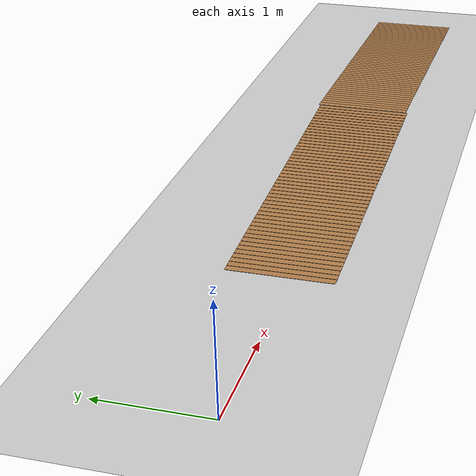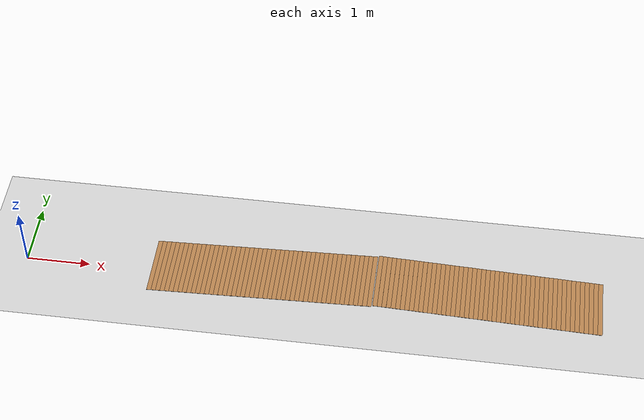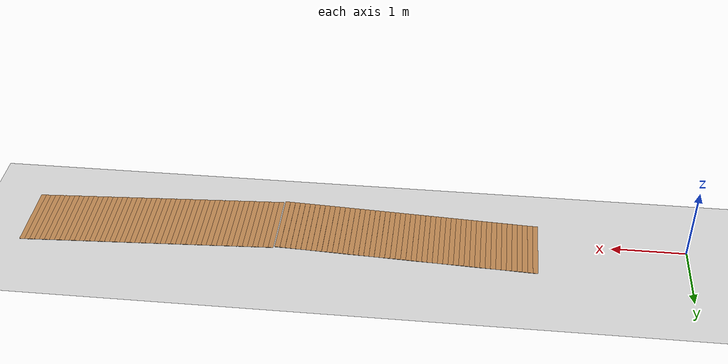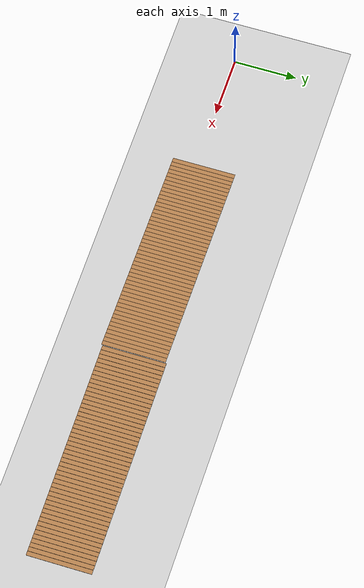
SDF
<sdf version="1.6">
 <world name="default">
  <model name="ground_plane">
   <static>1</static>
   <link name="link">
    <collision name="collision">
     <geometry><plane><normal>0 0 1</normal><size>100 100</size></plane></geometry>
     <surface>
      <contact><collide_bitmask>65535</collide_bitmask></contact>
      <friction><ode><mu>100</mu><mu2>50</mu2></ode></friction>
     </surface>
    </collision>
    <visual name="visual">
     <cast_shadows>0</cast_shadows>
     <geometry><plane><normal>0 0 1</normal><size>100 100</size></plane></geometry>
     <material>
      <script><uri>file://media/materials/scripts/gazebo.material</uri><name>Gazebo/Grey</name></script>
     </material>
    </visual>
   </link>
  </model>
  <model name="lamp">
   <pose>5.48739 0.130038 0 0 -0 0</pose>
   <link name="Stairs_1">
    <visual name="Stairs_1_Visual_0">
     <pose>-3.47239 -0.010038 0.0015 0 -0 1.5708</pose>
     <geometry><box><size>1 0.07 0.003</size></box></geometry>
     <material>
      <script><uri>file://media/materials/scripts/gazebo.material</uri><name>Gazebo/Wood</name></script>
      <ambient>1 1 1 1</ambient>
     </material>
     <meta><layer>0</layer></meta>
    </visual>
    <collision name="Stairs_1_Collision_0">
     <geometry><box><size>1 0.07 0.003</size></box></geometry>
     <pose>-3.47239 -0.010038 0.0015 0 -0 1.5708</pose>
    </collision>
    <visual name="Stairs_1_Visual_1">
     <pose>-3.40239 -0.010038 0.0045 0 -0 1.5708</pose>
     <geometry><box><size>1 0.07 0.003</size></box></geometry>
     <material>
      <script><uri>file://media/materials/scripts/gazebo.material</uri><name>Gazebo/Wood</name></script>
      <ambient>1 1 1 1</ambient>
     </material>
     <meta><layer>0</layer></meta>
    </visual>
    <collision name="Stairs_1_Collision_1">
     <geometry><box><size>1 0.07 0.003</size></box></geometry>
     <pose>-3.40239 -0.010038 0.0045 0 -0 1.5708</pose>
    </collision>
    <visual name="Stairs_1_Visual_2">
     <pose>-3.33239 -0.010038 0.0075 0 -0 1.5708</pose>
     <geometry><box><size>1 0.07 0.003</size></box></geometry>
     <material>
      <script><uri>file://media/materials/scripts/gazebo.material</uri><name>Gazebo/Wood</name></script>
      <ambient>1 1 1 1</ambient>
     </material>
     <meta><layer>0</layer></meta>
    </visual>
    <collision name="Stairs_1_Collision_2">
     <geometry><box><size>1 0.07 0.003</size></box></geometry>
     <pose>-3.33239 -0.010038 0.0075 0 -0 1.5708</pose>
    </collision>
    <visual name="Stairs_1_Visual_3">
     <pose>-3.26239 -0.010038 0.0105 0 -0 1.5708</pose>
     <geometry><box><size>1 0.07 0.003</size></box></geometry>
     <material>
      <script><uri>file://media/materials/scripts/gazebo.material</uri><name>Gazebo/Wood</name></script>
      <ambient>1 1 1 1</ambient>
     </material>
     <meta><layer>0</layer></meta>
    </visual>
    <collision name="Stairs_1_Collision_3">
     <geometry><box><size>1 0.07 0.003</size></box></geometry>
     <pose>-3.26239 -0.010038 0.0105 0 -0 1.5708</pose>
    </collision>
    <visual name="Stairs_1_Visual_4">
     <pose>-3.19239 -0.010038 0.0135 0 -0 1.5708</pose>
     <geometry><box><size>1 0.07 0.003</size></box></geometry>
     <material>
      <script><uri>file://media/materials/scripts/gazebo.material</uri><name>Gazebo/Wood</name></script>
      <ambient>1 1 1 1</ambient>
     </material>
     <meta><layer>0</layer></meta>
    </visual>
    <collision name="Stairs_1_Collision_4">
     <geometry><box><size>1 0.07 0.003</size></box></geometry>
     <pose>-3.19239 -0.010038 0.0135 0 -0 1.5708</pose>
    </collision>
    <visual name="Stairs_1_Visual_5">
     <pose>-3.12239 -0.010038 0.0165 0 -0 1.5708</pose>
     <geometry><box><size>1 0.07 0.003</size></box></geometry>
     <material>
      <script><uri>file://media/materials/scripts/gazebo.material</uri><name>Gazebo/Wood</name></script>
      <ambient>1 1 1 1</ambient>
     </material>
     <meta><layer>0</layer></meta>
    </visual>
    <collision name="Stairs_1_Collision_5">
     <geometry><box><size>1 0.07 0.003</size></box></geometry>
     <pose>-3.12239 -0.010038 0.0165 0 -0 1.5708</pose>
    </collision>
    <visual name="Stairs_1_Visual_6">
     <pose>-3.05239 -0.010038 0.0195 0 -0 1.5708</pose>
     <geometry><box><size>1 0.07 0.003</size></box></geometry>
     <material>
      <script><uri>file://media/materials/scripts/gazebo.material</uri><name>Gazebo/Wood</name></script>
      <ambient>1 1 1 1</ambient>
     </material>
     <meta><layer>0</layer></meta>
    </visual>
    <collision name="Stairs_1_Collision_6">
     <geometry><box><size>1 0.07 0.003</size></box></geometry>
     <pose>-3.05239 -0.010038 0.0195 0 -0 1.5708</pose>
    </collision>
    <visual name="Stairs_1_Visual_7">
     <pose>-2.98239 -0.010038 0.0225 0 -0 1.5708</pose>
     <geometry><box><size>1 0.07 0.003</size></box></geometry>
     <material>
      <script><uri>file://media/materials/scripts/gazebo.material</uri><name>Gazebo/Wood</name></script>
      <ambient>1 1 1 1</ambient>
     </material>
     <meta><layer>0</layer></meta>
    </visual>
    <collision name="Stairs_1_Collision_7">
     <geometry><box><size>1 0.07 0.003</size></box></geometry>
     <pose>-2.98239 -0.010038 0.0225 0 -0 1.5708</pose>
    </collision>
    <visual name="Stairs_1_Visual_8">
     <pose>-2.91239 -0.010038 0.0255 0 -0 1.5708</pose>
     <geometry><box><size>1 0.07 0.003</size></box></geometry>
     <material>
      <script><uri>file://media/materials/scripts/gazebo.material</uri><name>Gazebo/Wood</name></script>
      <ambient>1 1 1 1</ambient>
     </material>
     <meta><layer>0</layer></meta>
    </visual>
    <collision name="Stairs_1_Collision_8">
     <geometry><box><size>1 0.07 0.003</size></box></geometry>
     <pose>-2.91239 -0.010038 0.0255 0 -0 1.5708</pose>
    </collision>
    <visual name="Stairs_1_Visual_9">
     <pose>-2.84239 -0.010038 0.0285 0 -0 1.5708</pose>
     <geometry><box><size>1 0.07 0.003</size></box></geometry>
     <material>
      <script><uri>file://media/materials/scripts/gazebo.material</uri><name>Gazebo/Wood</name></script>
      <ambient>1 1 1 1</ambient>
     </material>
     <meta><layer>0</layer></meta>
    </visual>
    <collision name="Stairs_1_Collision_9">
     <geometry><box><size>1 0.07 0.003</size></box></geometry>
     <pose>-2.84239 -0.010038 0.0285 0 -0 1.5708</pose>
    </collision>
    <visual name="Stairs_1_Visual_10">
     <pose>-2.77239 -0.010038 0.0315 0 -0 1.5708</pose>
     <geometry><box><size>1 0.07 0.003</size></box></geometry>
     <material>
      <script><uri>file://media/materials/scripts/gazebo.material</uri><name>Gazebo/Wood</name></script>
      <ambient>1 1 1 1</ambient>
     </material>
     <meta><layer>0</layer></meta>
    </visual>
    <collision name="Stairs_1_Collision_10">
     <geometry><box><size>1 0.07 0.003</size></box></geometry>
     <pose>-2.77239 -0.010038 0.0315 0 -0 1.5708</pose>
    </collision>
    <visual name="Stairs_1_Visual_11">
     <pose>-2.70239 -0.010038 0.0345 0 -0 1.5708</pose>
     <geometry><box><size>1 0.07 0.003</size></box></geometry>
     <material>
      <script><uri>file://media/materials/scripts/gazebo.material</uri><name>Gazebo/Wood</name></script>
      <ambient>1 1 1 1</ambient>
     </material>
     <meta><layer>0</layer></meta>
    </visual>
    <collision name="Stairs_1_Collision_11">
     <geometry><box><size>1 0.07 0.003</size></box></geometry>
     <pose>-2.70239 -0.010038 0.0345 0 -0 1.5708</pose>
    </collision>
    <visual name="Stairs_1_Visual_12">
     <pose>-2.63239 -0.010038 0.0375 0 -0 1.5708</pose>
     <geometry><box><size>1 0.07 0.003</size></box></geometry>
     <material>
      <script><uri>file://media/materials/scripts/gazebo.material</uri><name>Gazebo/Wood</name></script>
      <ambient>1 1 1 1</ambient>
     </material>
     <meta><layer>0</layer></meta>
    </visual>
    <collision name="Stairs_1_Collision_12">
     <geometry><box><size>1 0.07 0.003</size></box></geometry>
     <pose>-2.63239 -0.010038 0.0375 0 -0 1.5708</pose>
    </collision>
    <visual name="Stairs_1_Visual_13">
     <pose>-2.56239 -0.010038 0.0405 0 -0 1.5708</pose>
     <geometry><box><size>1 0.07 0.003</size></box></geometry>
     <material>
      <script><uri>file://media/materials/scripts/gazebo.material</uri><name>Gazebo/Wood</name></script>
      <ambient>1 1 1 1</ambient>
     </material>
     <meta><layer>0</layer></meta>
    </visual>
    <collision name="Stairs_1_Collision_13">
     <geometry><box><size>1 0.07 0.003</size></box></geometry>
     <pose>-2.56239 -0.010038 0.0405 0 -0 1.5708</pose>
    </collision>
    <visual name="Stairs_1_Visual_14">
     <pose>-2.49239 -0.010038 0.0435 0 -0 1.5708</pose>
     <geometry><box><size>1 0.07 0.003</size></box></geometry>
     <material>
      <script><uri>file://media/materials/scripts/gazebo.material</uri><name>Gazebo/Wood</name></script>
      <ambient>1 1 1 1</ambient>
     </material>
     <meta><layer>0</layer></meta>
    </visual>
    <collision name="Stairs_1_Collision_14">
     <geometry><box><size>1 0.07 0.003</size></box></geometry>
     <pose>-2.49239 -0.010038 0.0435 0 -0 1.5708</pose>
    </collision>
    <visual name="Stairs_1_Visual_15">
     <pose>-2.42239 -0.010038 0.0465 0 -0 1.5708</pose>
     <geometry><box><size>1 0.07 0.003</size></box></geometry>
     <material>
      <script><uri>file://media/materials/scripts/gazebo.material</uri><name>Gazebo/Wood</name></script>
      <ambient>1 1 1 1</ambient>
     </material>
     <meta><layer>0</layer></meta>
    </visual>
    <collision name="Stairs_1_Collision_15">
     <geometry><box><size>1 0.07 0.003</size></box></geometry>
     <pose>-2.42239 -0.010038 0.0465 0 -0 1.5708</pose>
    </collision>
    <visual name="Stairs_1_Visual_16">
     <pose>-2.35239 -0.010038 0.0495 0 -0 1.5708</pose>
     <geometry><box><size>1 0.07 0.003</size></box></geometry>
     <material>
      <script><uri>file://media/materials/scripts/gazebo.material</uri><name>Gazebo/Wood</name></script>
      <ambient>1 1 1 1</ambient>
     </material>
     <meta><layer>0</layer></meta>
    </visual>
    <collision name="Stairs_1_Collision_16">
     <geometry><box><size>1 0.07 0.003</size></box></geometry>
     <pose>-2.35239 -0.010038 0.0495 0 -0 1.5708</pose>
    </collision>
    <visual name="Stairs_1_Visual_17">
     <pose>-2.28239 -0.010038 0.0525 0 -0 1.5708</pose>
     <geometry><box><size>1 0.07 0.003</size></box></geometry>
     <material>
      <script><uri>file://media/materials/scripts/gazebo.material</uri><name>Gazebo/Wood</name></script>
      <ambient>1 1 1 1</ambient>
     </material>
     <meta><layer>0</layer></meta>
    </visual>
    <collision name="Stairs_1_Collision_17">
     <geometry><box><size>1 0.07 0.003</size></box></geometry>
     <pose>-2.28239 -0.010038 0.0525 0 -0 1.5708</pose>
    </collision>
    <visual name="Stairs_1_Visual_18">
     <pose>-2.21239 -0.010038 0.0555 0 -0 1.5708</pose>
     <geometry><box><size>1 0.07 0.003</size></box></geometry>
     <material>
      <script><uri>file://media/materials/scripts/gazebo.material</uri><name>Gazebo/Wood</name></script>
      <ambient>1 1 1 1</ambient>
     </material>
     <meta><layer>0</layer></meta>
    </visual>
    <collision name="Stairs_1_Collision_18">
     <geometry><box><size>1 0.07 0.003</size></box></geometry>
     <pose>-2.21239 -0.010038 0.0555 0 -0 1.5708</pose>
    </collision>
    <visual name="Stairs_1_Visual_19">
     <pose>-2.14239 -0.010038 0.0585 0 -0 1.5708</pose>
     <geometry><box><size>1 0.07 0.003</size></box></geometry>
     <material>
      <script><uri>file://media/materials/scripts/gazebo.material</uri><name>Gazebo/Wood</name></script>
      <ambient>1 1 1 1</ambient>
     </material>
     <meta><layer>0</layer></meta>
    </visual>
    <collision name="Stairs_1_Collision_19">
     <geometry><box><size>1 0.07 0.003</size></box></geometry>
     <pose>-2.14239 -0.010038 0.0585 0 -0 1.5708</pose>
    </collision>
    <visual name="Stairs_1_Visual_20">
     <pose>-2.07239 -0.010038 0.0615 0 -0 1.5708</pose>
     <geometry><box><size>1 0.07 0.003</size></box></geometry>
     <material>
      <script><uri>file://media/materials/scripts/gazebo.material</uri><name>Gazebo/Wood</name></script>
      <ambient>1 1 1 1</ambient>
     </material>
     <meta><layer>0</layer></meta>
    </visual>
    <collision name="Stairs_1_Collision_20">
     <geometry><box><size>1 0.07 0.003</size></box></geometry>
     <pose>-2.07239 -0.010038 0.0615 0 -0 1.5708</pose>
    </collision>
    <visual name="Stairs_1_Visual_21">
     <pose>-2.00239 -0.010038 0.0645 0 -0 1.5708</pose>
     <geometry><box><size>1 0.07 0.003</size></box></geometry>
     <material>
      <script><uri>file://media/materials/scripts/gazebo.material</uri><name>Gazebo/Wood</name></script>
      <ambient>1 1 1 1</ambient>
     </material>
     <meta><layer>0</layer></meta>
    </visual>
    <collision name="Stairs_1_Collision_21">
     <geometry><box><size>1 0.07 0.003</size></box></geometry>
     <pose>-2.00239 -0.010038 0.0645 0 -0 1.5708</pose>
    </collision>
    <visual name="Stairs_1_Visual_22">
     <pose>-1.93239 -0.010038 0.0675 0 -0 1.5708</pose>
     <geometry><box><size>1 0.07 0.003</size></box></geometry>
     <material>
      <script><uri>file://media/materials/scripts/gazebo.material</uri><name>Gazebo/Wood</name></script>
      <ambient>1 1 1 1</ambient>
     </material>
     <meta><layer>0</layer></meta>
    </visual>
    <collision name="Stairs_1_Collision_22">
     <geometry><box><size>1 0.07 0.003</size></box></geometry>
     <pose>-1.93239 -0.010038 0.0675 0 -0 1.5708</pose>
    </collision>
    <visual name="Stairs_1_Visual_23">
     <pose>-1.86239 -0.010038 0.0705 0 -0 1.5708</pose>
     <geometry><box><size>1 0.07 0.003</size></box></geometry>
     <material>
      <script><uri>file://media/materials/scripts/gazebo.material</uri><name>Gazebo/Wood</name></script>
      <ambient>1 1 1 1</ambient>
     </material>
     <meta><layer>0</layer></meta>
    </visual>
    <collision name="Stairs_1_Collision_23">
     <geometry><box><size>1 0.07 0.003</size></box></geometry>
     <pose>-1.86239 -0.010038 0.0705 0 -0 1.5708</pose>
    </collision>
    <visual name="Stairs_1_Visual_24">
     <pose>-1.79239 -0.010038 0.0735 0 -0 1.5708</pose>
     <geometry><box><size>1 0.07 0.003</size></box></geometry>
     <material>
      <script><uri>file://media/materials/scripts/gazebo.material</uri><name>Gazebo/Wood</name></script>
      <ambient>1 1 1 1</ambient>
     </material>
     <meta><layer>0</layer></meta>
    </visual>
    <collision name="Stairs_1_Collision_24">
     <geometry><box><size>1 0.07 0.003</size></box></geometry>
     <pose>-1.79239 -0.010038 0.0735 0 -0 1.5708</pose>
    </collision>
    <visual name="Stairs_1_Visual_25">
     <pose>-1.72239 -0.010038 0.0765 0 -0 1.5708</pose>
     <geometry><box><size>1 0.07 0.003</size></box></geometry>
     <material>
      <script><uri>file://media/materials/scripts/gazebo.material</uri><name>Gazebo/Wood</name></script>
      <ambient>1 1 1 1</ambient>
     </material>
     <meta><layer>0</layer></meta>
    </visual>
    <collision name="Stairs_1_Collision_25">
     <geometry><box><size>1 0.07 0.003</size></box></geometry>
     <pose>-1.72239 -0.010038 0.0765 0 -0 1.5708</pose>
    </collision>
    <visual name="Stairs_1_Visual_26">
     <pose>-1.65239 -0.010038 0.0795 0 -0 1.5708</pose>
     <geometry><box><size>1 0.07 0.003</size></box></geometry>
     <material>
      <script><uri>file://media/materials/scripts/gazebo.material</uri><name>Gazebo/Wood</name></script>
      <ambient>1 1 1 1</ambient>
     </material>
     <meta><layer>0</layer></meta>
    </visual>
    <collision name="Stairs_1_Collision_26">
     <geometry><box><size>1 0.07 0.003</size></box></geometry>
     <pose>-1.65239 -0.010038 0.0795 0 -0 1.5708</pose>
    </collision>
    <visual name="Stairs_1_Visual_27">
     <pose>-1.58239 -0.010038 0.0825 0 -0 1.5708</pose>
     <geometry><box><size>1 0.07 0.003</size></box></geometry>
     <material>
      <script><uri>file://media/materials/scripts/gazebo.material</uri><name>Gazebo/Wood</name></script>
      <ambient>1 1 1 1</ambient>
     </material>
     <meta><layer>0</layer></meta>
    </visual>
    <collision name="Stairs_1_Collision_27">
     <geometry><box><size>1 0.07 0.003</size></box></geometry>
     <pose>-1.58239 -0.010038 0.0825 0 -0 1.5708</pose>
    </collision>
    <visual name="Stairs_1_Visual_28">
     <pose>-1.51239 -0.010037 0.0855 0 -0 1.5708</pose>
     <geometry><box><size>1 0.07 0.003</size></box></geometry>
     <material>
      <script><uri>file://media/materials/scripts/gazebo.material</uri><name>Gazebo/Wood</name></script>
      <ambient>1 1 1 1</ambient>
     </material>
     <meta><layer>0</layer></meta>
    </visual>
    <collision name="Stairs_1_Collision_28">
     <geometry><box><size>1 0.07 0.003</size></box></geometry>
     <pose>-1.51239 -0.010037 0.0855 0 -0 1.5708</pose>
    </collision>
    <visual name="Stairs_1_Visual_29">
     <pose>-1.44239 -0.010037 0.0885 0 -0 1.5708</pose>
     <geometry><box><size>1 0.07 0.003</size></box></geometry>
     <material>
      <script><uri>file://media/materials/scripts/gazebo.material</uri><name>Gazebo/Wood</name></script>
      <ambient>1 1 1 1</ambient>
     </material>
     <meta><layer>0</layer></meta>
    </visual>
    <collision name="Stairs_1_Collision_29">
     <geometry><box><size>1 0.07 0.003</size></box></geometry>
     <pose>-1.44239 -0.010037 0.0885 0 -0 1.5708</pose>
    </collision>
    <visual name="Stairs_1_Visual_30">
     <pose>-1.37239 -0.010037 0.0915 0 -0 1.5708</pose>
     <geometry><box><size>1 0.07 0.003</size></box></geometry>
     <material>
      <script><uri>file://media/materials/scripts/gazebo.material</uri><name>Gazebo/Wood</name></script>
      <ambient>1 1 1 1</ambient>
     </material>
     <meta><layer>0</layer></meta>
    </visual>
    <collision name="Stairs_1_Collision_30">
     <geometry><box><size>1 0.07 0.003</size></box></geometry>
     <pose>-1.37239 -0.010037 0.0915 0 -0 1.5708</pose>
    </collision>
    <visual name="Stairs_1_Visual_31">
     <pose>-1.30239 -0.010037 0.0945 0 -0 1.5708</pose>
     <geometry><box><size>1 0.07 0.003</size></box></geometry>
     <material>
      <script><uri>file://media/materials/scripts/gazebo.material</uri><name>Gazebo/Wood</name></script>
      <ambient>1 1 1 1</ambient>
     </material>
     <meta><layer>0</layer></meta>
    </visual>
    <collision name="Stairs_1_Collision_31">
     <geometry><box><size>1 0.07 0.003</size></box></geometry>
     <pose>-1.30239 -0.010037 0.0945 0 -0 1.5708</pose>
    </collision>
    <visual name="Stairs_1_Visual_32">
     <pose>-1.23239 -0.010037 0.0975 0 -0 1.5708</pose>
     <geometry><box><size>1 0.07 0.003</size></box></geometry>
     <material>
      <script><uri>file://media/materials/scripts/gazebo.material</uri><name>Gazebo/Wood</name></script>
      <ambient>1 1 1 1</ambient>
     </material>
     <meta><layer>0</layer></meta>
    </visual>
    <collision name="Stairs_1_Collision_32">
     <geometry><box><size>1 0.07 0.003</size></box></geometry>
     <pose>-1.23239 -0.010037 0.0975 0 -0 1.5708</pose>
    </collision>
    <visual name="Stairs_1_Visual_33">
     <pose>-1.16239 -0.010037 0.1005 0 -0 1.5708</pose>
     <geometry><box><size>1 0.07 0.003</size></box></geometry>
     <material>
      <script><uri>file://media/materials/scripts/gazebo.material</uri><name>Gazebo/Wood</name></script>
      <ambient>1 1 1 1</ambient>
     </material>
     <meta><layer>0</layer></meta>
    </visual>
    <collision name="Stairs_1_Collision_33">
     <geometry><box><size>1 0.07 0.003</size></box></geometry>
     <pose>-1.16239 -0.010037 0.1005 0 -0 1.5708</pose>
    </collision>
    <visual name="Stairs_1_Visual_34">
     <pose>-1.09239 -0.010037 0.1035 0 -0 1.5708</pose>
     <geometry><box><size>1 0.07 0.003</size></box></geometry>
     <material>
      <script><uri>file://media/materials/scripts/gazebo.material</uri><name>Gazebo/Wood</name></script>
      <ambient>1 1 1 1</ambient>
     </material>
     <meta><layer>0</layer></meta>
    </visual>
    <collision name="Stairs_1_Collision_34">
     <geometry><box><size>1 0.07 0.003</size></box></geometry>
     <pose>-1.09239 -0.010037 0.1035 0 -0 1.5708</pose>
    </collision>
    <visual name="Stairs_1_Visual_35">
     <pose>-1.02239 -0.010037 0.1065 0 -0 1.5708</pose>
     <geometry><box><size>1 0.07 0.003</size></box></geometry>
     <material>
      <script><uri>file://media/materials/scripts/gazebo.material</uri><name>Gazebo/Wood</name></script>
      <ambient>1 1 1 1</ambient>
     </material>
     <meta><layer>0</layer></meta>
    </visual>
    <collision name="Stairs_1_Collision_35">
     <geometry><box><size>1 0.07 0.003</size></box></geometry>
     <pose>-1.02239 -0.010037 0.1065 0 -0 1.5708</pose>
    </collision>
    <visual name="Stairs_1_Visual_36">
     <pose>-0.952387 -0.010037 0.1095 0 -0 1.5708</pose>
     <geometry><box><size>1 0.07 0.003</size></box></geometry>
     <material>
      <script><uri>file://media/materials/scripts/gazebo.material</uri><name>Gazebo/Wood</name></script>
      <ambient>1 1 1 1</ambient>
     </material>
     <meta><layer>0</layer></meta>
    </visual>
    <collision name="Stairs_1_Collision_36">
     <geometry><box><size>1 0.07 0.003</size></box></geometry>
     <pose>-0.952387 -0.010037 0.1095 0 -0 1.5708</pose>
    </collision>
    <visual name="Stairs_1_Visual_37">
     <pose>-0.882387 -0.010037 0.1125 0 -0 1.5708</pose>
     <geometry><box><size>1 0.07 0.003</size></box></geometry>
     <material>
      <script><uri>file://media/materials/scripts/gazebo.material</uri><name>Gazebo/Wood</name></script>
      <ambient>1 1 1 1</ambient>
     </material>
     <meta><layer>0</layer></meta>
    </visual>
    <collision name="Stairs_1_Collision_37">
     <geometry><box><size>1 0.07 0.003</size></box></geometry>
     <pose>-0.882387 -0.010037 0.1125 0 -0 1.5708</pose>
    </collision>
    <visual name="Stairs_1_Visual_38">
     <pose>-0.812387 -0.010037 0.1155 0 -0 1.5708</pose>
     <geometry><box><size>1 0.07 0.003</size></box></geometry>
     <material>
      <script><uri>file://media/materials/scripts/gazebo.material</uri><name>Gazebo/Wood</name></script>
      <ambient>1 1 1 1</ambient>
     </material>
     <meta><layer>0</layer></meta>
    </visual>
    <collision name="Stairs_1_Collision_38">
     <geometry><box><size>1 0.07 0.003</size></box></geometry>
     <pose>-0.812387 -0.010037 0.1155 0 -0 1.5708</pose>
    </collision>
    <visual name="Stairs_1_Visual_39">
     <pose>-0.742387 -0.010037 0.1185 0 -0 1.5708</pose>
     <geometry><box><size>1 0.07 0.003</size></box></geometry>
     <material>
      <script><uri>file://media/materials/scripts/gazebo.material</uri><name>Gazebo/Wood</name></script>
      <ambient>1 1 1 1</ambient>
     </material>
     <meta><layer>0</layer></meta>
    </visual>
    <collision name="Stairs_1_Collision_39">
     <geometry><box><size>1 0.07 0.003</size></box></geometry>
     <pose>-0.742387 -0.010037 0.1185 0 -0 1.5708</pose>
    </collision>
    <visual name="Stairs_1_Visual_40">
     <pose>-0.672387 -0.010037 0.1215 0 -0 1.5708</pose>
     <geometry><box><size>1 0.07 0.003</size></box></geometry>
     <material>
      <script><uri>file://media/materials/scripts/gazebo.material</uri><name>Gazebo/Wood</name></script>
      <ambient>1 1 1 1</ambient>
     </material>
     <meta><layer>0</layer></meta>
    </visual>
    <collision name="Stairs_1_Collision_40">
     <geometry><box><size>1 0.07 0.003</size></box></geometry>
     <pose>-0.672387 -0.010037 0.1215 0 -0 1.5708</pose>
    </collision>
    <visual name="Stairs_1_Visual_41">
     <pose>-0.602387 -0.010037 0.1245 0 -0 1.5708</pose>
     <geometry><box><size>1 0.07 0.003</size></box></geometry>
     <material>
      <script><uri>file://media/materials/scripts/gazebo.material</uri><name>Gazebo/Wood</name></script>
      <ambient>1 1 1 1</ambient>
     </material>
     <meta><layer>0</layer></meta>
    </visual>
    <collision name="Stairs_1_Collision_41">
     <geometry><box><size>1 0.07 0.003</size></box></geometry>
     <pose>-0.602387 -0.010037 0.1245 0 -0 1.5708</pose>
    </collision>
    <visual name="Stairs_1_Visual_42">
     <pose>-0.532387 -0.010037 0.1275 0 -0 1.5708</pose>
     <geometry><box><size>1 0.07 0.003</size></box></geometry>
     <material>
      <script><uri>file://media/materials/scripts/gazebo.material</uri><name>Gazebo/Wood</name></script>
      <ambient>1 1 1 1</ambient>
     </material>
     <meta><layer>0</layer></meta>
    </visual>
    <collision name="Stairs_1_Collision_42">
     <geometry><box><size>1 0.07 0.003</size></box></geometry>
     <pose>-0.532387 -0.010037 0.1275 0 -0 1.5708</pose>
    </collision>
    <visual name="Stairs_1_Visual_43">
     <pose>-0.462387 -0.010037 0.1305 0 -0 1.5708</pose>
     <geometry><box><size>1 0.07 0.003</size></box></geometry>
     <material>
      <script><uri>file://media/materials/scripts/gazebo.material</uri><name>Gazebo/Wood</name></script>
      <ambient>1 1 1 1</ambient>
     </material>
     <meta><layer>0</layer></meta>
    </visual>
    <collision name="Stairs_1_Collision_43">
     <geometry><box><size>1 0.07 0.003</size></box></geometry>
     <pose>-0.462387 -0.010037 0.1305 0 -0 1.5708</pose>
    </collision>
    <visual name="Stairs_1_Visual_44">
     <pose>-0.392387 -0.010037 0.1335 0 -0 1.5708</pose>
     <geometry><box><size>1 0.07 0.003</size></box></geometry>
     <material>
      <script><uri>file://media/materials/scripts/gazebo.material</uri><name>Gazebo/Wood</name></script>
      <ambient>1 1 1 1</ambient>
     </material>
     <meta><layer>0</layer></meta>
    </visual>
    <collision name="Stairs_1_Collision_44">
     <geometry><box><size>1 0.07 0.003</size></box></geometry>
     <pose>-0.392387 -0.010037 0.1335 0 -0 1.5708</pose>
    </collision>
    <visual name="Stairs_1_Visual_45">
     <pose>-0.322387 -0.010037 0.1365 0 -0 1.5708</pose>
     <geometry><box><size>1 0.07 0.003</size></box></geometry>
     <material>
      <script><uri>file://media/materials/scripts/gazebo.material</uri><name>Gazebo/Wood</name></script>
      <ambient>1 1 1 1</ambient>
     </material>
     <meta><layer>0</layer></meta>
    </visual>
    <collision name="Stairs_1_Collision_45">
     <geometry><box><size>1 0.07 0.003</size></box></geometry>
     <pose>-0.322387 -0.010037 0.1365 0 -0 1.5708</pose>
    </collision>
    <visual name="Stairs_1_Visual_46">
     <pose>-0.252387 -0.010037 0.1395 0 -0 1.5708</pose>
     <geometry><box><size>1 0.07 0.003</size></box></geometry>
     <material>
      <script><uri>file://media/materials/scripts/gazebo.material</uri><name>Gazebo/Wood</name></script>
      <ambient>1 1 1 1</ambient>
     </material>
     <meta><layer>0</layer></meta>
    </visual>
    <collision name="Stairs_1_Collision_46">
     <geometry><box><size>1 0.07 0.003</size></box></geometry>
     <pose>-0.252387 -0.010037 0.1395 0 -0 1.5708</pose>
    </collision>
    <visual name="Stairs_1_Visual_47">
     <pose>-0.182387 -0.010037 0.1425 0 -0 1.5708</pose>
     <geometry><box><size>1 0.07 0.003</size></box></geometry>
     <material>
      <script><uri>file://media/materials/scripts/gazebo.material</uri><name>Gazebo/Wood</name></script>
      <ambient>1 1 1 1</ambient>
     </material>
     <meta><layer>0</layer></meta>
    </visual>
    <collision name="Stairs_1_Collision_47">
     <geometry><box><size>1 0.07 0.003</size></box></geometry>
     <pose>-0.182387 -0.010037 0.1425 0 -0 1.5708</pose>
    </collision>
    <visual name="Stairs_1_Visual_48">
     <pose>-0.112387 -0.010037 0.1455 0 -0 1.5708</pose>
     <geometry><box><size>1 0.07 0.003</size></box></geometry>
     <material>
      <script><uri>file://media/materials/scripts/gazebo.material</uri><name>Gazebo/Wood</name></script>
      <ambient>1 1 1 1</ambient>
     </material>
     <meta><layer>0</layer></meta>
    </visual>
    <collision name="Stairs_1_Collision_48">
     <geometry><box><size>1 0.07 0.003</size></box></geometry>
     <pose>-0.112387 -0.010037 0.1455 0 -0 1.5708</pose>
    </collision>
    <visual name="Stairs_1_Visual_49">
     <pose>-0.042387 -0.010037 0.1485 0 -0 1.5708</pose>
     <geometry><box><size>1 0.07 0.003</size></box></geometry>
     <material>
      <script><uri>file://media/materials/scripts/gazebo.material</uri><name>Gazebo/Wood</name></script>
      <ambient>1 1 1 1</ambient>
     </material>
     <meta><layer>0</layer></meta>
    </visual>
    <collision name="Stairs_1_Collision_49">
     <geometry><box><size>1 0.07 0.003</size></box></geometry>
     <pose>-0.042387 -0.010037 0.1485 0 -0 1.5708</pose>
    </collision>
   </link>
   <link name="Stairs_3">
    <visual name="Stairs_3_Visual_0">
     <pose>3.47239 0.010037 0.0015 0 0 -1.5708</pose>
     <geometry><box><size>1 0.07 0.003</size></box></geometry>
     <material>
      <script><uri>file://media/materials/scripts/gazebo.material</uri><name>Gazebo/Wood</name></script>
      <ambient>1 1 1 1</ambient>
     </material>
     <meta><layer>0</layer></meta>
    </visual>
    <collision name="Stairs_3_Collision_0">
     <geometry><box><size>1 0.07 0.003</size></box></geometry>
     <pose>3.47239 0.010037 0.0015 0 0 -1.5708</pose>
    </collision>
    <visual name="Stairs_3_Visual_1">
     <pose>3.40239 0.010037 0.0045 0 0 -1.5708</pose>
     <geometry><box><size>1 0.07 0.003</size></box></geometry>
     <material>
      <script><uri>file://media/materials/scripts/gazebo.material</uri><name>Gazebo/Wood</name></script>
      <ambient>1 1 1 1</ambient>
     </material>
     <meta><layer>0</layer></meta>
    </visual>
    <collision name="Stairs_3_Collision_1">
     <geometry><box><size>1 0.07 0.003</size></box></geometry>
     <pose>3.40239 0.010037 0.0045 0 0 -1.5708</pose>
    </collision>
    <visual name="Stairs_3_Visual_2">
     <pose>3.33239 0.010037 0.0075 0 0 -1.5708</pose>
     <geometry><box><size>1 0.07 0.003</size></box></geometry>
     <material>
      <script><uri>file://media/materials/scripts/gazebo.material</uri><name>Gazebo/Wood</name></script>
      <ambient>1 1 1 1</ambient>
     </material>
     <meta><layer>0</layer></meta>
    </visual>
    <collision name="Stairs_3_Collision_2">
     <geometry><box><size>1 0.07 0.003</size></box></geometry>
     <pose>3.33239 0.010037 0.0075 0 0 -1.5708</pose>
    </collision>
    <visual name="Stairs_3_Visual_3">
     <pose>3.26239 0.010037 0.0105 0 0 -1.5708</pose>
     <geometry><box><size>1 0.07 0.003</size></box></geometry>
     <material>
      <script><uri>file://media/materials/scripts/gazebo.material</uri><name>Gazebo/Wood</name></script>
      <ambient>1 1 1 1</ambient>
     </material>
     <meta><layer>0</layer></meta>
    </visual>
    <collision name="Stairs_3_Collision_3">
     <geometry><box><size>1 0.07 0.003</size></box></geometry>
     <pose>3.26239 0.010037 0.0105 0 0 -1.5708</pose>
    </collision>
    <visual name="Stairs_3_Visual_4">
     <pose>3.19239 0.010037 0.0135 0 0 -1.5708</pose>
     <geometry><box><size>1 0.07 0.003</size></box></geometry>
     <material>
      <script><uri>file://media/materials/scripts/gazebo.material</uri><name>Gazebo/Wood</name></script>
      <ambient>1 1 1 1</ambient>
     </material>
     <meta><layer>0</layer></meta>
    </visual>
    <collision name="Stairs_3_Collision_4">
     <geometry><box><size>1 0.07 0.003</size></box></geometry>
     <pose>3.19239 0.010037 0.0135 0 0 -1.5708</pose>
    </collision>
    <visual name="Stairs_3_Visual_5">
     <pose>3.12239 0.010037 0.0165 0 0 -1.5708</pose>
     <geometry><box><size>1 0.07 0.003</size></box></geometry>
     <material>
      <script><uri>file://media/materials/scripts/gazebo.material</uri><name>Gazebo/Wood</name></script>
      <ambient>1 1 1 1</ambient>
     </material>
     <meta><layer>0</layer></meta>
    </visual>
    <collision name="Stairs_3_Collision_5">
     <geometry><box><size>1 0.07 0.003</size></box></geometry>
     <pose>3.12239 0.010037 0.0165 0 0 -1.5708</pose>
    </collision>
    <visual name="Stairs_3_Visual_6">
     <pose>3.05239 0.010037 0.0195 0 0 -1.5708</pose>
     <geometry><box><size>1 0.07 0.003</size></box></geometry>
     <material>
      <script><uri>file://media/materials/scripts/gazebo.material</uri><name>Gazebo/Wood</name></script>
      <ambient>1 1 1 1</ambient>
     </material>
     <meta><layer>0</layer></meta>
    </visual>
    <collision name="Stairs_3_Collision_6">
     <geometry><box><size>1 0.07 0.003</size></box></geometry>
     <pose>3.05239 0.010037 0.0195 0 0 -1.5708</pose>
    </collision>
    <visual name="Stairs_3_Visual_7">
     <pose>2.98239 0.010037 0.0225 0 0 -1.5708</pose>
     <geometry><box><size>1 0.07 0.003</size></box></geometry>
     <material>
      <script><uri>file://media/materials/scripts/gazebo.material</uri><name>Gazebo/Wood</name></script>
      <ambient>1 1 1 1</ambient>
     </material>
     <meta><layer>0</layer></meta>
    </visual>
    <collision name="Stairs_3_Collision_7">
     <geometry><box><size>1 0.07 0.003</size></box></geometry>
     <pose>2.98239 0.010037 0.0225 0 0 -1.5708</pose>
    </collision>
    <visual name="Stairs_3_Visual_8">
     <pose>2.91239 0.010037 0.0255 0 0 -1.5708</pose>
     <geometry><box><size>1 0.07 0.003</size></box></geometry>
     <material>
      <script><uri>file://media/materials/scripts/gazebo.material</uri><name>Gazebo/Wood</name></script>
      <ambient>1 1 1 1</ambient>
     </material>
     <meta><layer>0</layer></meta>
    </visual>
    <collision name="Stairs_3_Collision_8">
     <geometry><box><size>1 0.07 0.003</size></box></geometry>
     <pose>2.91239 0.010037 0.0255 0 0 -1.5708</pose>
    </collision>
    <visual name="Stairs_3_Visual_9">
     <pose>2.84239 0.010037 0.0285 0 0 -1.5708</pose>
     <geometry><box><size>1 0.07 0.003</size></box></geometry>
     <material>
      <script><uri>file://media/materials/scripts/gazebo.material</uri><name>Gazebo/Wood</name></script>
      <ambient>1 1 1 1</ambient>
     </material>
     <meta><layer>0</layer></meta>
    </visual>
    <collision name="Stairs_3_Collision_9">
     <geometry><box><size>1 0.07 0.003</size></box></geometry>
     <pose>2.84239 0.010037 0.0285 0 0 -1.5708</pose>
    </collision>
    <visual name="Stairs_3_Visual_10">
     <pose>2.77239 0.010037 0.0315 0 0 -1.5708</pose>
     <geometry><box><size>1 0.07 0.003</size></box></geometry>
     <material>
      <script><uri>file://media/materials/scripts/gazebo.material</uri><name>Gazebo/Wood</name></script>
      <ambient>1 1 1 1</ambient>
     </material>
     <meta><layer>0</layer></meta>
    </visual>
    <collision name="Stairs_3_Collision_10">
     <geometry><box><size>1 0.07 0.003</size></box></geometry>
     <pose>2.77239 0.010037 0.0315 0 0 -1.5708</pose>
    </collision>
    <visual name="Stairs_3_Visual_11">
     <pose>2.70239 0.010037 0.0345 0 0 -1.5708</pose>
     <geometry><box><size>1 0.07 0.003</size></box></geometry>
     <material>
      <script><uri>file://media/materials/scripts/gazebo.material</uri><name>Gazebo/Wood</name></script>
      <ambient>1 1 1 1</ambient>
     </material>
     <meta><layer>0</layer></meta>
    </visual>
    <collision name="Stairs_3_Collision_11">
     <geometry><box><size>1 0.07 0.003</size></box></geometry>
     <pose>2.70239 0.010037 0.0345 0 0 -1.5708</pose>
    </collision>
    <visual name="Stairs_3_Visual_12">
     <pose>2.63239 0.010037 0.0375 0 0 -1.5708</pose>
     <geometry><box><size>1 0.07 0.003</size></box></geometry>
     <material>
      <script><uri>file://media/materials/scripts/gazebo.material</uri><name>Gazebo/Wood</name></script>
      <ambient>1 1 1 1</ambient>
     </material>
     <meta><layer>0</layer></meta>
    </visual>
    <collision name="Stairs_3_Collision_12">
     <geometry><box><size>1 0.07 0.003</size></box></geometry>
     <pose>2.63239 0.010037 0.0375 0 0 -1.5708</pose>
    </collision>
    <visual name="Stairs_3_Visual_13">
     <pose>2.56239 0.010037 0.0405 0 0 -1.5708</pose>
     <geometry><box><size>1 0.07 0.003</size></box></geometry>
     <material>
      <script><uri>file://media/materials/scripts/gazebo.material</uri><name>Gazebo/Wood</name></script>
      <ambient>1 1 1 1</ambient>
     </material>
     <meta><layer>0</layer></meta>
    </visual>
    <collision name="Stairs_3_Collision_13">
     <geometry><box><size>1 0.07 0.003</size></box></geometry>
     <pose>2.56239 0.010037 0.0405 0 0 -1.5708</pose>
    </collision>
    <visual name="Stairs_3_Visual_14">
     <pose>2.49239 0.010037 0.0435 0 0 -1.5708</pose>
     <geometry><box><size>1 0.07 0.003</size></box></geometry>
     <material>
      <script><uri>file://media/materials/scripts/gazebo.material</uri><name>Gazebo/Wood</name></script>
      <ambient>1 1 1 1</ambient>
     </material>
     <meta><layer>0</layer></meta>
    </visual>
    <collision name="Stairs_3_Collision_14">
     <geometry><box><size>1 0.07 0.003</size></box></geometry>
     <pose>2.49239 0.010037 0.0435 0 0 -1.5708</pose>
    </collision>
    <visual name="Stairs_3_Visual_15">
     <pose>2.42239 0.010037 0.0465 0 0 -1.5708</pose>
     <geometry><box><size>1 0.07 0.003</size></box></geometry>
     <material>
      <script><uri>file://media/materials/scripts/gazebo.material</uri><name>Gazebo/Wood</name></script>
      <ambient>1 1 1 1</ambient>
     </material>
     <meta><layer>0</layer></meta>
    </visual>
    <collision name="Stairs_3_Collision_15">
     <geometry><box><size>1 0.07 0.003</size></box></geometry>
     <pose>2.42239 0.010037 0.0465 0 0 -1.5708</pose>
    </collision>
    <visual name="Stairs_3_Visual_16">
     <pose>2.35239 0.010037 0.0495 0 0 -1.5708</pose>
     <geometry><box><size>1 0.07 0.003</size></box></geometry>
     <material>
      <script><uri>file://media/materials/scripts/gazebo.material</uri><name>Gazebo/Wood</name></script>
      <ambient>1 1 1 1</ambient>
     </material>
     <meta><layer>0</layer></meta>
    </visual>
    <collision name="Stairs_3_Collision_16">
     <geometry><box><size>1 0.07 0.003</size></box></geometry>
     <pose>2.35239 0.010037 0.0495 0 0 -1.5708</pose>
    </collision>
    <visual name="Stairs_3_Visual_17">
     <pose>2.28239 0.010037 0.0525 0 0 -1.5708</pose>
     <geometry><box><size>1 0.07 0.003</size></box></geometry>
     <material>
      <script><uri>file://media/materials/scripts/gazebo.material</uri><name>Gazebo/Wood</name></script>
      <ambient>1 1 1 1</ambient>
     </material>
     <meta><layer>0</layer></meta>
    </visual>
    <collision name="Stairs_3_Collision_17">
     <geometry><box><size>1 0.07 0.003</size></box></geometry>
     <pose>2.28239 0.010037 0.0525 0 0 -1.5708</pose>
    </collision>
    <visual name="Stairs_3_Visual_18">
     <pose>2.21239 0.010037 0.0555 0 0 -1.5708</pose>
     <geometry><box><size>1 0.07 0.003</size></box></geometry>
     <material>
      <script><uri>file://media/materials/scripts/gazebo.material</uri><name>Gazebo/Wood</name></script>
      <ambient>1 1 1 1</ambient>
     </material>
     <meta><layer>0</layer></meta>
    </visual>
    <collision name="Stairs_3_Collision_18">
     <geometry><box><size>1 0.07 0.003</size></box></geometry>
     <pose>2.21239 0.010037 0.0555 0 0 -1.5708</pose>
    </collision>
    <visual name="Stairs_3_Visual_19">
     <pose>2.14239 0.010037 0.0585 0 0 -1.5708</pose>
     <geometry><box><size>1 0.07 0.003</size></box></geometry>
     <material>
      <script><uri>file://media/materials/scripts/gazebo.material</uri><name>Gazebo/Wood</name></script>
      <ambient>1 1 1 1</ambient>
     </material>
     <meta><layer>0</layer></meta>
    </visual>
    <collision name="Stairs_3_Collision_19">
     <geometry><box><size>1 0.07 0.003</size></box></geometry>
     <pose>2.14239 0.010037 0.0585 0 0 -1.5708</pose>
    </collision>
    <visual name="Stairs_3_Visual_20">
     <pose>2.07239 0.010037 0.0615 0 0 -1.5708</pose>
     <geometry><box><size>1 0.07 0.003</size></box></geometry>
     <material>
      <script><uri>file://media/materials/scripts/gazebo.material</uri><name>Gazebo/Wood</name></script>
      <ambient>1 1 1 1</ambient>
     </material>
     <meta><layer>0</layer></meta>
    </visual>
    <collision name="Stairs_3_Collision_20">
     <geometry><box><size>1 0.07 0.003</size></box></geometry>
     <pose>2.07239 0.010037 0.0615 0 0 -1.5708</pose>
    </collision>
    <visual name="Stairs_3_Visual_21">
     <pose>2.00239 0.010037 0.0645 0 0 -1.5708</pose>
     <geometry><box><size>1 0.07 0.003</size></box></geometry>
     <material>
      <script><uri>file://media/materials/scripts/gazebo.material</uri><name>Gazebo/Wood</name></script>
      <ambient>1 1 1 1</ambient>
     </material>
     <meta><layer>0</layer></meta>
    </visual>
    <collision name="Stairs_3_Collision_21">
     <geometry><box><size>1 0.07 0.003</size></box></geometry>
     <pose>2.00239 0.010037 0.0645 0 0 -1.5708</pose>
    </collision>
    <visual name="Stairs_3_Visual_22">
     <pose>1.93239 0.010037 0.0675 0 0 -1.5708</pose>
     <geometry><box><size>1 0.07 0.003</size></box></geometry>
     <material>
      <script><uri>file://media/materials/scripts/gazebo.material</uri><name>Gazebo/Wood</name></script>
      <ambient>1 1 1 1</ambient>
     </material>
     <meta><layer>0</layer></meta>
    </visual>
    <collision name="Stairs_3_Collision_22">
     <geometry><box><size>1 0.07 0.003</size></box></geometry>
     <pose>1.93239 0.010037 0.0675 0 0 -1.5708</pose>
    </collision>
    <visual name="Stairs_3_Visual_23">
     <pose>1.86239 0.010037 0.0705 0 0 -1.5708</pose>
     <geometry><box><size>1 0.07 0.003</size></box></geometry>
     <material>
      <script><uri>file://media/materials/scripts/gazebo.material</uri><name>Gazebo/Wood</name></script>
      <ambient>1 1 1 1</ambient>
     </material>
     <meta><layer>0</layer></meta>
    </visual>
    <collision name="Stairs_3_Collision_23">
     <geometry><box><size>1 0.07 0.003</size></box></geometry>
     <pose>1.86239 0.010037 0.0705 0 0 -1.5708</pose>
    </collision>
    <visual name="Stairs_3_Visual_24">
     <pose>1.79239 0.010037 0.0735 0 0 -1.5708</pose>
     <geometry><box><size>1 0.07 0.003</size></box></geometry>
     <material>
      <script><uri>file://media/materials/scripts/gazebo.material</uri><name>Gazebo/Wood</name></script>
      <ambient>1 1 1 1</ambient>
     </material>
     <meta><layer>0</layer></meta>
    </visual>
    <collision name="Stairs_3_Collision_24">
     <geometry><box><size>1 0.07 0.003</size></box></geometry>
     <pose>1.79239 0.010037 0.0735 0 0 -1.5708</pose>
    </collision>
    <visual name="Stairs_3_Visual_25">
     <pose>1.72239 0.010037 0.0765 0 0 -1.5708</pose>
     <geometry><box><size>1 0.07 0.003</size></box></geometry>
     <material>
      <script><uri>file://media/materials/scripts/gazebo.material</uri><name>Gazebo/Wood</name></script>
      <ambient>1 1 1 1</ambient>
     </material>
     <meta><layer>0</layer></meta>
    </visual>
    <collision name="Stairs_3_Collision_25">
     <geometry><box><size>1 0.07 0.003</size></box></geometry>
     <pose>1.72239 0.010037 0.0765 0 0 -1.5708</pose>
    </collision>
    <visual name="Stairs_3_Visual_26">
     <pose>1.65239 0.010037 0.0795 0 0 -1.5708</pose>
     <geometry><box><size>1 0.07 0.003</size></box></geometry>
     <material>
      <script><uri>file://media/materials/scripts/gazebo.material</uri><name>Gazebo/Wood</name></script>
      <ambient>1 1 1 1</ambient>
     </material>
     <meta><layer>0</layer></meta>
    </visual>
    <collision name="Stairs_3_Collision_26">
     <geometry><box><size>1 0.07 0.003</size></box></geometry>
     <pose>1.65239 0.010037 0.0795 0 0 -1.5708</pose>
    </collision>
    <visual name="Stairs_3_Visual_27">
     <pose>1.58239 0.010037 0.0825 0 0 -1.5708</pose>
     <geometry><box><size>1 0.07 0.003</size></box></geometry>
     <material>
      <script><uri>file://media/materials/scripts/gazebo.material</uri><name>Gazebo/Wood</name></script>
      <ambient>1 1 1 1</ambient>
     </material>
     <meta><layer>0</layer></meta>
    </visual>
    <collision name="Stairs_3_Collision_27">
     <geometry><box><size>1 0.07 0.003</size></box></geometry>
     <pose>1.58239 0.010037 0.0825 0 0 -1.5708</pose>
    </collision>
    <visual name="Stairs_3_Visual_28">
     <pose>1.51239 0.010038 0.0855 0 0 -1.5708</pose>
     <geometry><box><size>1 0.07 0.003</size></box></geometry>
     <material>
      <script><uri>file://media/materials/scripts/gazebo.material</uri><name>Gazebo/Wood</name></script>
      <ambient>1 1 1 1</ambient>
     </material>
     <meta><layer>0</layer></meta>
    </visual>
    <collision name="Stairs_3_Collision_28">
     <geometry><box><size>1 0.07 0.003</size></box></geometry>
     <pose>1.51239 0.010038 0.0855 0 0 -1.5708</pose>
    </collision>
    <visual name="Stairs_3_Visual_29">
     <pose>1.44239 0.010038 0.0885 0 0 -1.5708</pose>
     <geometry><box><size>1 0.07 0.003</size></box></geometry>
     <material>
      <script><uri>file://media/materials/scripts/gazebo.material</uri><name>Gazebo/Wood</name></script>
      <ambient>1 1 1 1</ambient>
     </material>
     <meta><layer>0</layer></meta>
    </visual>
    <collision name="Stairs_3_Collision_29">
     <geometry><box><size>1 0.07 0.003</size></box></geometry>
     <pose>1.44239 0.010038 0.0885 0 0 -1.5708</pose>
    </collision>
    <visual name="Stairs_3_Visual_30">
     <pose>1.37239 0.010038 0.0915 0 0 -1.5708</pose>
     <geometry><box><size>1 0.07 0.003</size></box></geometry>
     <material>
      <script><uri>file://media/materials/scripts/gazebo.material</uri><name>Gazebo/Wood</name></script>
      <ambient>1 1 1 1</ambient>
     </material>
     <meta><layer>0</layer></meta>
    </visual>
    <collision name="Stairs_3_Collision_30">
     <geometry><box><size>1 0.07 0.003</size></box></geometry>
     <pose>1.37239 0.010038 0.0915 0 0 -1.5708</pose>
    </collision>
    <visual name="Stairs_3_Visual_31">
     <pose>1.30239 0.010038 0.0945 0 0 -1.5708</pose>
     <geometry><box><size>1 0.07 0.003</size></box></geometry>
     <material>
      <script><uri>file://media/materials/scripts/gazebo.material</uri><name>Gazebo/Wood</name></script>
      <ambient>1 1 1 1</ambient>
     </material>
     <meta><layer>0</layer></meta>
    </visual>
    <collision name="Stairs_3_Collision_31">
     <geometry><box><size>1 0.07 0.003</size></box></geometry>
     <pose>1.30239 0.010038 0.0945 0 0 -1.5708</pose>
    </collision>
    <visual name="Stairs_3_Visual_32">
     <pose>1.23239 0.010038 0.0975 0 0 -1.5708</pose>
     <geometry><box><size>1 0.07 0.003</size></box></geometry>
     <material>
      <script><uri>file://media/materials/scripts/gazebo.material</uri><name>Gazebo/Wood</name></script>
      <ambient>1 1 1 1</ambient>
     </material>
     <meta><layer>0</layer></meta>
    </visual>
    <collision name="Stairs_3_Collision_32">
     <geometry><box><size>1 0.07 0.003</size></box></geometry>
     <pose>1.23239 0.010038 0.0975 0 0 -1.5708</pose>
    </collision>
    <visual name="Stairs_3_Visual_33">
     <pose>1.16239 0.010038 0.1005 0 0 -1.5708</pose>
     <geometry><box><size>1 0.07 0.003</size></box></geometry>
     <material>
      <script><uri>file://media/materials/scripts/gazebo.material</uri><name>Gazebo/Wood</name></script>
      <ambient>1 1 1 1</ambient>
     </material>
     <meta><layer>0</layer></meta>
    </visual>
    <collision name="Stairs_3_Collision_33">
     <geometry><box><size>1 0.07 0.003</size></box></geometry>
     <pose>1.16239 0.010038 0.1005 0 0 -1.5708</pose>
    </collision>
    <visual name="Stairs_3_Visual_34">
     <pose>1.09239 0.010038 0.1035 0 0 -1.5708</pose>
     <geometry><box><size>1 0.07 0.003</size></box></geometry>
     <material>
      <script><uri>file://media/materials/scripts/gazebo.material</uri><name>Gazebo/Wood</name></script>
      <ambient>1 1 1 1</ambient>
     </material>
     <meta><layer>0</layer></meta>
    </visual>
    <collision name="Stairs_3_Collision_34">
     <geometry><box><size>1 0.07 0.003</size></box></geometry>
     <pose>1.09239 0.010038 0.1035 0 0 -1.5708</pose>
    </collision>
    <visual name="Stairs_3_Visual_35">
     <pose>1.02239 0.010038 0.1065 0 0 -1.5708</pose>
     <geometry><box><size>1 0.07 0.003</size></box></geometry>
     <material>
      <script><uri>file://media/materials/scripts/gazebo.material</uri><name>Gazebo/Wood</name></script>
      <ambient>1 1 1 1</ambient>
     </material>
     <meta><layer>0</layer></meta>
    </visual>
    <collision name="Stairs_3_Collision_35">
     <geometry><box><size>1 0.07 0.003</size></box></geometry>
     <pose>1.02239 0.010038 0.1065 0 0 -1.5708</pose>
    </collision>
    <visual name="Stairs_3_Visual_36">
     <pose>0.952387 0.010038 0.1095 0 0 -1.5708</pose>
     <geometry><box><size>1 0.07 0.003</size></box></geometry>
     <material>
      <script><uri>file://media/materials/scripts/gazebo.material</uri><name>Gazebo/Wood</name></script>
      <ambient>1 1 1 1</ambient>
     </material>
     <meta><layer>0</layer></meta>
    </visual>
    <collision name="Stairs_3_Collision_36">
     <geometry><box><size>1 0.07 0.003</size></box></geometry>
     <pose>0.952387 0.010038 0.1095 0 0 -1.5708</pose>
    </collision>
    <visual name="Stairs_3_Visual_37">
     <pose>0.882388 0.010038 0.1125 0 0 -1.5708</pose>
     <geometry><box><size>1 0.07 0.003</size></box></geometry>
     <material>
      <script><uri>file://media/materials/scripts/gazebo.material</uri><name>Gazebo/Wood</name></script>
      <ambient>1 1 1 1</ambient>
     </material>
     <meta><layer>0</layer></meta>
    </visual>
    <collision name="Stairs_3_Collision_37">
     <geometry><box><size>1 0.07 0.003</size></box></geometry>
     <pose>0.882388 0.010038 0.1125 0 0 -1.5708</pose>
    </collision>
    <visual name="Stairs_3_Visual_38">
     <pose>0.812387 0.010038 0.1155 0 0 -1.5708</pose>
     <geometry><box><size>1 0.07 0.003</size></box></geometry>
     <material>
      <script><uri>file://media/materials/scripts/gazebo.material</uri><name>Gazebo/Wood</name></script>
      <ambient>1 1 1 1</ambient>
     </material>
     <meta><layer>0</layer></meta>
    </visual>
    <collision name="Stairs_3_Collision_38">
     <geometry><box><size>1 0.07 0.003</size></box></geometry>
     <pose>0.812387 0.010038 0.1155 0 0 -1.5708</pose>
    </collision>
    <visual name="Stairs_3_Visual_39">
     <pose>0.742387 0.010038 0.1185 0 0 -1.5708</pose>
     <geometry><box><size>1 0.07 0.003</size></box></geometry>
     <material>
      <script><uri>file://media/materials/scripts/gazebo.material</uri><name>Gazebo/Wood</name></script>
      <ambient>1 1 1 1</ambient>
     </material>
     <meta><layer>0</layer></meta>
    </visual>
    <collision name="Stairs_3_Collision_39">
     <geometry><box><size>1 0.07 0.003</size></box></geometry>
     <pose>0.742387 0.010038 0.1185 0 0 -1.5708</pose>
    </collision>
    <visual name="Stairs_3_Visual_40">
     <pose>0.672387 0.010038 0.1215 0 0 -1.5708</pose>
     <geometry><box><size>1 0.07 0.003</size></box></geometry>
     <material>
      <script><uri>file://media/materials/scripts/gazebo.material</uri><name>Gazebo/Wood</name></script>
      <ambient>1 1 1 1</ambient>
     </material>
     <meta><layer>0</layer></meta>
    </visual>
    <collision name="Stairs_3_Collision_40">
     <geometry><box><size>1 0.07 0.003</size></box></geometry>
     <pose>0.672387 0.010038 0.1215 0 0 -1.5708</pose>
    </collision>
    <visual name="Stairs_3_Visual_41">
     <pose>0.602387 0.010038 0.1245 0 0 -1.5708</pose>
     <geometry><box><size>1 0.07 0.003</size></box></geometry>
     <material>
      <script><uri>file://media/materials/scripts/gazebo.material</uri><name>Gazebo/Wood</name></script>
      <ambient>1 1 1 1</ambient>
     </material>
     <meta><layer>0</layer></meta>
    </visual>
    <collision name="Stairs_3_Collision_41">
     <geometry><box><size>1 0.07 0.003</size></box></geometry>
     <pose>0.602387 0.010038 0.1245 0 0 -1.5708</pose>
    </collision>
    <visual name="Stairs_3_Visual_42">
     <pose>0.532387 0.010038 0.1275 0 0 -1.5708</pose>
     <geometry><box><size>1 0.07 0.003</size></box></geometry>
     <material>
      <script><uri>file://media/materials/scripts/gazebo.material</uri><name>Gazebo/Wood</name></script>
      <ambient>1 1 1 1</ambient>
     </material>
     <meta><layer>0</layer></meta>
    </visual>
    <collision name="Stairs_3_Collision_42">
     <geometry><box><size>1 0.07 0.003</size></box></geometry>
     <pose>0.532387 0.010038 0.1275 0 0 -1.5708</pose>
    </collision>
    <visual name="Stairs_3_Visual_43">
     <pose>0.462387 0.010038 0.1305 0 0 -1.5708</pose>
     <geometry><box><size>1 0.07 0.003</size></box></geometry>
     <material>
      <script><uri>file://media/materials/scripts/gazebo.material</uri><name>Gazebo/Wood</name></script>
      <ambient>1 1 1 1</ambient>
     </material>
     <meta><layer>0</layer></meta>
    </visual>
    <collision name="Stairs_3_Collision_43">
     <geometry><box><size>1 0.07 0.003</size></box></geometry>
     <pose>0.462387 0.010038 0.1305 0 0 -1.5708</pose>
    </collision>
    <visual name="Stairs_3_Visual_44">
     <pose>0.392387 0.010038 0.1335 0 0 -1.5708</pose>
     <geometry><box><size>1 0.07 0.003</size></box></geometry>
     <material>
      <script><uri>file://media/materials/scripts/gazebo.material</uri><name>Gazebo/Wood</name></script>
      <ambient>1 1 1 1</ambient>
     </material>
     <meta><layer>0</layer></meta>
    </visual>
    <collision name="Stairs_3_Collision_44">
     <geometry><box><size>1 0.07 0.003</size></box></geometry>
     <pose>0.392387 0.010038 0.1335 0 0 -1.5708</pose>
    </collision>
    <visual name="Stairs_3_Visual_45">
     <pose>0.322387 0.010038 0.1365 0 0 -1.5708</pose>
     <geometry><box><size>1 0.07 0.003</size></box></geometry>
     <material>
      <script><uri>file://media/materials/scripts/gazebo.material</uri><name>Gazebo/Wood</name></script>
      <ambient>1 1 1 1</ambient>
     </material>
     <meta><layer>0</layer></meta>
    </visual>
    <collision name="Stairs_3_Collision_45">
     <geometry><box><size>1 0.07 0.003</size></box></geometry>
     <pose>0.322387 0.010038 0.1365 0 0 -1.5708</pose>
    </collision>
    <visual name="Stairs_3_Visual_46">
     <pose>0.252387 0.010038 0.1395 0 0 -1.5708</pose>
     <geometry><box><size>1 0.07 0.003</size></box></geometry>
     <material>
      <script><uri>file://media/materials/scripts/gazebo.material</uri><name>Gazebo/Wood</name></script>
      <ambient>1 1 1 1</ambient>
     </material>
     <meta><layer>0</layer></meta>
    </visual>
    <collision name="Stairs_3_Collision_46">
     <geometry><box><size>1 0.07 0.003</size></box></geometry>
     <pose>0.252387 0.010038 0.1395 0 0 -1.5708</pose>
    </collision>
    <visual name="Stairs_3_Visual_47">
     <pose>0.182387 0.010038 0.1425 0 0 -1.5708</pose>
     <geometry><box><size>1 0.07 0.003</size></box></geometry>
     <material>
      <script><uri>file://media/materials/scripts/gazebo.material</uri><name>Gazebo/Wood</name></script>
      <ambient>1 1 1 1</ambient>
     </material>
     <meta><layer>0</layer></meta>
    </visual>
    <collision name="Stairs_3_Collision_47">
     <geometry><box><size>1 0.07 0.003</size></box></geometry>
     <pose>0.182387 0.010038 0.1425 0 0 -1.5708</pose>
    </collision>
    <visual name="Stairs_3_Visual_48">
     <pose>0.112387 0.010038 0.1455 0 0 -1.5708</pose>
     <geometry><box><size>1 0.07 0.003</size></box></geometry>
     <material>
      <script><uri>file://media/materials/scripts/gazebo.material</uri><name>Gazebo/Wood</name></script>
      <ambient>1 1 1 1</ambient>
     </material>
     <meta><layer>0</layer></meta>
    </visual>
    <collision name="Stairs_3_Collision_48">
     <geometry><box><size>1 0.07 0.003</size></box></geometry>
     <pose>0.112387 0.010038 0.1455 0 0 -1.5708</pose>
    </collision>
    <visual name="Stairs_3_Visual_49">
     <pose>0.042387 0.010038 0.1485 0 0 -1.5708</pose>
     <geometry><box><size>1 0.07 0.003</size></box></geometry>
     <material>
      <script><uri>file://media/materials/scripts/gazebo.material</uri><name>Gazebo/Wood</name></script>
      <ambient>1 1 1 1</ambient>
     </material>
     <meta><layer>0</layer></meta>
    </visual>
    <collision name="Stairs_3_Collision_49">
     <geometry><box><size>1 0.07 0.003</size></box></geometry>
     <pose>0.042387 0.010038 0.1485 0 0 -1.5708</pose>
    </collision>
   </link>
   <static>1</static>
  </model>
 </world>
</sdf>
